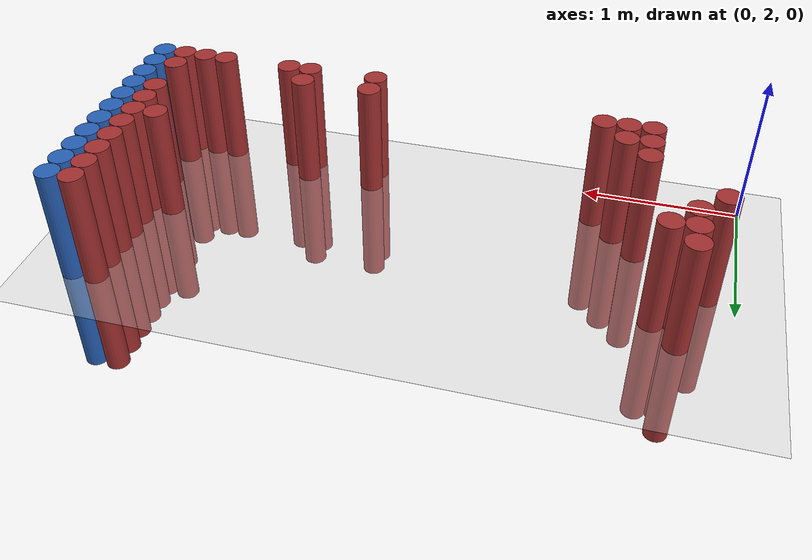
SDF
<sdf version="1.6">
 <world name="default">
  <model name="ground_plane">
   <static>1</static>
   <link name="link">
    <collision name="collision">
     <geometry><plane><normal>0 0 1</normal><size>100 100</size></plane></geometry>
     <surface><friction><ode><mu>100</mu><mu2>50</mu2></ode></friction></surface>
    </collision>
    <visual name="visual">
     <cast_shadows>0</cast_shadows>
     <geometry><plane><normal>0 0 1</normal><size>100 100</size></plane></geometry>
     <material>
      <script><uri>file://media/materials/scripts/gazebo.material</uri><name>Gazebo/Grey</name></script>
     </material>
    </visual>
   </link>
  </model>
  <model name="unit_cylinder_142">
   <static>1</static>
   <pose>3.925000 2.125000 0.000000 0.000000 0.000000 0.000000</pose>
   <link name="link">
    <inertial>
     <mass>1</mass>
     <inertia><ixx>0.145833</ixx><ixy>0</ixy><ixz>0</ixz><iyy>0.145833</iyy><iyz>0</iyz><izz>0.125</izz></inertia>
    </inertial>
    <collision name="collision">
     <geometry><cylinder><radius>0.075000</radius><length>1.5</length></cylinder></geometry>
    </collision>
    <visual name="visual">
     <geometry><cylinder><radius>0.075000</radius><length>1.5</length></cylinder></geometry>
     <material>
      <ambient>0.152000 0.379000 0.720000 1</ambient>
      <diffuse>0.152000 0.379000 0.720000 1</diffuse>
     </material>
     <material>
      <script><name>Gazebo/Grey</name><uri>file://media/materials/scripts/gazebo.material</uri></script>
     </material>
    </visual>
   </link>
  </model>
  <model name="unit_cylinder_144">
   <static>1</static>
   <pose>3.925000 2.275000 0.000000 0.000000 0.000000 0.000000</pose>
   <link name="link">
    <inertial>
     <mass>1</mass>
     <inertia><ixx>0.145833</ixx><ixy>0</ixy><ixz>0</ixz><iyy>0.145833</iyy><iyz>0</iyz><izz>0.125</izz></inertia>
    </inertial>
    <collision name="collision">
     <geometry><cylinder><radius>0.075000</radius><length>1.5</length></cylinder></geometry>
    </collision>
    <visual name="visual">
     <geometry><cylinder><radius>0.075000</radius><length>1.5</length></cylinder></geometry>
     <material>
      <ambient>0.152000 0.379000 0.720000 1</ambient>
      <diffuse>0.152000 0.379000 0.720000 1</diffuse>
     </material>
     <material>
      <script><name>Gazebo/Grey</name><uri>file://media/materials/scripts/gazebo.material</uri></script>
     </material>
    </visual>
   </link>
  </model>
  <model name="unit_cylinder_146">
   <static>1</static>
   <pose>3.925000 2.425000 0.000000 0.000000 0.000000 0.000000</pose>
   <link name="link">
    <inertial>
     <mass>1</mass>
     <inertia><ixx>0.145833</ixx><ixy>0</ixy><ixz>0</ixz><iyy>0.145833</iyy><iyz>0</iyz><izz>0.125</izz></inertia>
    </inertial>
    <collision name="collision">
     <geometry><cylinder><radius>0.075000</radius><length>1.5</length></cylinder></geometry>
    </collision>
    <visual name="visual">
     <geometry><cylinder><radius>0.075000</radius><length>1.5</length></cylinder></geometry>
     <material>
      <ambient>0.152000 0.379000 0.720000 1</ambient>
      <diffuse>0.152000 0.379000 0.720000 1</diffuse>
     </material>
     <material>
      <script><name>Gazebo/Grey</name><uri>file://media/materials/scripts/gazebo.material</uri></script>
     </material>
    </visual>
   </link>
  </model>
  <model name="unit_cylinder_148">
   <static>1</static>
   <pose>3.925000 2.575000 0.000000 0.000000 0.000000 0.000000</pose>
   <link name="link">
    <inertial>
     <mass>1</mass>
     <inertia><ixx>0.145833</ixx><ixy>0</ixy><ixz>0</ixz><iyy>0.145833</iyy><iyz>0</iyz><izz>0.125</izz></inertia>
    </inertial>
    <collision name="collision">
     <geometry><cylinder><radius>0.075000</radius><length>1.5</length></cylinder></geometry>
    </collision>
    <visual name="visual">
     <geometry><cylinder><radius>0.075000</radius><length>1.5</length></cylinder></geometry>
     <material>
      <ambient>0.152000 0.379000 0.720000 1</ambient>
      <diffuse>0.152000 0.379000 0.720000 1</diffuse>
     </material>
     <material>
      <script><name>Gazebo/Grey</name><uri>file://media/materials/scripts/gazebo.material</uri></script>
     </material>
    </visual>
   </link>
  </model>
  <model name="unit_cylinder_150">
   <static>1</static>
   <pose>3.925000 2.725000 0.000000 0.000000 0.000000 0.000000</pose>
   <link name="link">
    <inertial>
     <mass>1</mass>
     <inertia><ixx>0.145833</ixx><ixy>0</ixy><ixz>0</ixz><iyy>0.145833</iyy><iyz>0</iyz><izz>0.125</izz></inertia>
    </inertial>
    <collision name="collision">
     <geometry><cylinder><radius>0.075000</radius><length>1.5</length></cylinder></geometry>
    </collision>
    <visual name="visual">
     <geometry><cylinder><radius>0.075000</radius><length>1.5</length></cylinder></geometry>
     <material>
      <ambient>0.152000 0.379000 0.720000 1</ambient>
      <diffuse>0.152000 0.379000 0.720000 1</diffuse>
     </material>
     <material>
      <script><name>Gazebo/Grey</name><uri>file://media/materials/scripts/gazebo.material</uri></script>
     </material>
    </visual>
   </link>
  </model>
  <model name="unit_cylinder_152">
   <static>1</static>
   <pose>3.925000 2.875000 0.000000 0.000000 0.000000 0.000000</pose>
   <link name="link">
    <inertial>
     <mass>1</mass>
     <inertia><ixx>0.145833</ixx><ixy>0</ixy><ixz>0</ixz><iyy>0.145833</iyy><iyz>0</iyz><izz>0.125</izz></inertia>
    </inertial>
    <collision name="collision">
     <geometry><cylinder><radius>0.075000</radius><length>1.5</length></cylinder></geometry>
    </collision>
    <visual name="visual">
     <geometry><cylinder><radius>0.075000</radius><length>1.5</length></cylinder></geometry>
     <material>
      <ambient>0.152000 0.379000 0.720000 1</ambient>
      <diffuse>0.152000 0.379000 0.720000 1</diffuse>
     </material>
     <material>
      <script><name>Gazebo/Grey</name><uri>file://media/materials/scripts/gazebo.material</uri></script>
     </material>
    </visual>
   </link>
  </model>
  <model name="unit_cylinder_154">
   <static>1</static>
   <pose>3.925000 3.025000 0.000000 0.000000 0.000000 0.000000</pose>
   <link name="link">
    <inertial>
     <mass>1</mass>
     <inertia><ixx>0.145833</ixx><ixy>0</ixy><ixz>0</ixz><iyy>0.145833</iyy><iyz>0</iyz><izz>0.125</izz></inertia>
    </inertial>
    <collision name="collision">
     <geometry><cylinder><radius>0.075000</radius><length>1.5</length></cylinder></geometry>
    </collision>
    <visual name="visual">
     <geometry><cylinder><radius>0.075000</radius><length>1.5</length></cylinder></geometry>
     <material>
      <ambient>0.152000 0.379000 0.720000 1</ambient>
      <diffuse>0.152000 0.379000 0.720000 1</diffuse>
     </material>
     <material>
      <script><name>Gazebo/Grey</name><uri>file://media/materials/scripts/gazebo.material</uri></script>
     </material>
    </visual>
   </link>
  </model>
  <model name="unit_cylinder_156">
   <static>1</static>
   <pose>3.925000 3.175000 0.000000 0.000000 0.000000 0.000000</pose>
   <link name="link">
    <inertial>
     <mass>1</mass>
     <inertia><ixx>0.145833</ixx><ixy>0</ixy><ixz>0</ixz><iyy>0.145833</iyy><iyz>0</iyz><izz>0.125</izz></inertia>
    </inertial>
    <collision name="collision">
     <geometry><cylinder><radius>0.075000</radius><length>1.5</length></cylinder></geometry>
    </collision>
    <visual name="visual">
     <geometry><cylinder><radius>0.075000</radius><length>1.5</length></cylinder></geometry>
     <material>
      <ambient>0.152000 0.379000 0.720000 1</ambient>
      <diffuse>0.152000 0.379000 0.720000 1</diffuse>
     </material>
     <material>
      <script><name>Gazebo/Grey</name><uri>file://media/materials/scripts/gazebo.material</uri></script>
     </material>
    </visual>
   </link>
  </model>
  <model name="unit_cylinder_158">
   <static>1</static>
   <pose>3.925000 3.325000 0.000000 0.000000 0.000000 0.000000</pose>
   <link name="link">
    <inertial>
     <mass>1</mass>
     <inertia><ixx>0.145833</ixx><ixy>0</ixy><ixz>0</ixz><iyy>0.145833</iyy><iyz>0</iyz><izz>0.125</izz></inertia>
    </inertial>
    <collision name="collision">
     <geometry><cylinder><radius>0.075000</radius><length>1.5</length></cylinder></geometry>
    </collision>
    <visual name="visual">
     <geometry><cylinder><radius>0.075000</radius><length>1.5</length></cylinder></geometry>
     <material>
      <ambient>0.152000 0.379000 0.720000 1</ambient>
      <diffuse>0.152000 0.379000 0.720000 1</diffuse>
     </material>
     <material>
      <script><name>Gazebo/Grey</name><uri>file://media/materials/scripts/gazebo.material</uri></script>
     </material>
    </visual>
   </link>
  </model>
  <model name="unit_cylinder_160">
   <static>1</static>
   <pose>3.925000 3.475000 0.000000 0.000000 0.000000 0.000000</pose>
   <link name="link">
    <inertial>
     <mass>1</mass>
     <inertia><ixx>0.145833</ixx><ixy>0</ixy><ixz>0</ixz><iyy>0.145833</iyy><iyz>0</iyz><izz>0.125</izz></inertia>
    </inertial>
    <collision name="collision">
     <geometry><cylinder><radius>0.075000</radius><length>1.5</length></cylinder></geometry>
    </collision>
    <visual name="visual">
     <geometry><cylinder><radius>0.075000</radius><length>1.5</length></cylinder></geometry>
     <material>
      <ambient>0.152000 0.379000 0.720000 1</ambient>
      <diffuse>0.152000 0.379000 0.720000 1</diffuse>
     </material>
     <material>
      <script><name>Gazebo/Grey</name><uri>file://media/materials/scripts/gazebo.material</uri></script>
     </material>
    </visual>
   </link>
  </model>
  <model name="unit_cylinder_162">
   <static>1</static>
   <pose>3.925000 3.625000 0.000000 0.000000 0.000000 0.000000</pose>
   <link name="link">
    <inertial>
     <mass>1</mass>
     <inertia><ixx>0.145833</ixx><ixy>0</ixy><ixz>0</ixz><iyy>0.145833</iyy><iyz>0</iyz><izz>0.125</izz></inertia>
    </inertial>
    <collision name="collision">
     <geometry><cylinder><radius>0.075000</radius><length>1.5</length></cylinder></geometry>
    </collision>
    <visual name="visual">
     <geometry><cylinder><radius>0.075000</radius><length>1.5</length></cylinder></geometry>
     <material>
      <ambient>0.152000 0.379000 0.720000 1</ambient>
      <diffuse>0.152000 0.379000 0.720000 1</diffuse>
     </material>
     <material>
      <script><name>Gazebo/Grey</name><uri>file://media/materials/scripts/gazebo.material</uri></script>
     </material>
    </visual>
   </link>
  </model>
  <model name="unit_cylinder_385">
   <static>1</static>
   <pose>0.175000 2.875000 0.000000 0.000000 0.000000 0.000000</pose>
   <link name="link">
    <inertial>
     <mass>1</mass>
     <inertia><ixx>0.145833</ixx><ixy>0</ixy><ixz>0</ixz><iyy>0.145833</iyy><iyz>0</iyz><izz>0.125</izz></inertia>
    </inertial>
    <collision name="collision">
     <geometry><cylinder><radius>0.075000</radius><length>1.5</length></cylinder></geometry>
    </collision>
    <visual name="visual">
     <geometry><cylinder><radius>0.075000</radius><length>1.5</length></cylinder></geometry>
     <material>
      <ambient>0.648000 0.192000 0.192000 1</ambient>
      <diffuse>0.648000 0.192000 0.192000 1</diffuse>
     </material>
     <material>
      <script><name>Gazebo/Grey</name><uri>file://media/materials/scripts/gazebo.material</uri></script>
     </material>
    </visual>
   </link>
  </model>
  <model name="unit_cylinder_390">
   <static>1</static>
   <pose>0.325000 3.025000 0.000000 0.000000 0.000000 0.000000</pose>
   <link name="link">
    <inertial>
     <mass>1</mass>
     <inertia><ixx>0.145833</ixx><ixy>0</ixy><ixz>0</ixz><iyy>0.145833</iyy><iyz>0</iyz><izz>0.125</izz></inertia>
    </inertial>
    <collision name="collision">
     <geometry><cylinder><radius>0.075000</radius><length>1.5</length></cylinder></geometry>
    </collision>
    <visual name="visual">
     <geometry><cylinder><radius>0.075000</radius><length>1.5</length></cylinder></geometry>
     <material>
      <ambient>0.648000 0.192000 0.192000 1</ambient>
      <diffuse>0.648000 0.192000 0.192000 1</diffuse>
     </material>
     <material>
      <script><name>Gazebo/Grey</name><uri>file://media/materials/scripts/gazebo.material</uri></script>
     </material>
    </visual>
   </link>
  </model>
  <model name="unit_cylinder_391">
   <static>1</static>
   <pose>0.325000 3.175000 0.000000 0.000000 0.000000 0.000000</pose>
   <link name="link">
    <inertial>
     <mass>1</mass>
     <inertia><ixx>0.145833</ixx><ixy>0</ixy><ixz>0</ixz><iyy>0.145833</iyy><iyz>0</iyz><izz>0.125</izz></inertia>
    </inertial>
    <collision name="collision">
     <geometry><cylinder><radius>0.075000</radius><length>1.5</length></cylinder></geometry>
    </collision>
    <visual name="visual">
     <geometry><cylinder><radius>0.075000</radius><length>1.5</length></cylinder></geometry>
     <material>
      <ambient>0.648000 0.192000 0.192000 1</ambient>
      <diffuse>0.648000 0.192000 0.192000 1</diffuse>
     </material>
     <material>
      <script><name>Gazebo/Grey</name><uri>file://media/materials/scripts/gazebo.material</uri></script>
     </material>
    </visual>
   </link>
  </model>
  <model name="unit_cylinder_392">
   <static>1</static>
   <pose>0.325000 3.325000 0.000000 0.000000 0.000000 0.000000</pose>
   <link name="link">
    <inertial>
     <mass>1</mass>
     <inertia><ixx>0.145833</ixx><ixy>0</ixy><ixz>0</ixz><iyy>0.145833</iyy><iyz>0</iyz><izz>0.125</izz></inertia>
    </inertial>
    <collision name="collision">
     <geometry><cylinder><radius>0.075000</radius><length>1.5</length></cylinder></geometry>
    </collision>
    <visual name="visual">
     <geometry><cylinder><radius>0.075000</radius><length>1.5</length></cylinder></geometry>
     <material>
      <ambient>0.648000 0.192000 0.192000 1</ambient>
      <diffuse>0.648000 0.192000 0.192000 1</diffuse>
     </material>
     <material>
      <script><name>Gazebo/Grey</name><uri>file://media/materials/scripts/gazebo.material</uri></script>
     </material>
    </visual>
   </link>
  </model>
  <model name="unit_cylinder_399">
   <static>1</static>
   <pose>0.475000 3.175000 0.000000 0.000000 0.000000 0.000000</pose>
   <link name="link">
    <inertial>
     <mass>1</mass>
     <inertia><ixx>0.145833</ixx><ixy>0</ixy><ixz>0</ixz><iyy>0.145833</iyy><iyz>0</iyz><izz>0.125</izz></inertia>
    </inertial>
    <collision name="collision">
     <geometry><cylinder><radius>0.075000</radius><length>1.5</length></cylinder></geometry>
    </collision>
    <visual name="visual">
     <geometry><cylinder><radius>0.075000</radius><length>1.5</length></cylinder></geometry>
     <material>
      <ambient>0.648000 0.192000 0.192000 1</ambient>
      <diffuse>0.648000 0.192000 0.192000 1</diffuse>
     </material>
     <material>
      <script><name>Gazebo/Grey</name><uri>file://media/materials/scripts/gazebo.material</uri></script>
     </material>
    </visual>
   </link>
  </model>
  <model name="unit_cylinder_404">
   <static>1</static>
   <pose>0.625000 2.275000 0.000000 0.000000 0.000000 0.000000</pose>
   <link name="link">
    <inertial>
     <mass>1</mass>
     <inertia><ixx>0.145833</ixx><ixy>0</ixy><ixz>0</ixz><iyy>0.145833</iyy><iyz>0</iyz><izz>0.125</izz></inertia>
    </inertial>
    <collision name="collision">
     <geometry><cylinder><radius>0.075000</radius><length>1.5</length></cylinder></geometry>
    </collision>
    <visual name="visual">
     <geometry><cylinder><radius>0.075000</radius><length>1.5</length></cylinder></geometry>
     <material>
      <ambient>0.648000 0.192000 0.192000 1</ambient>
      <diffuse>0.648000 0.192000 0.192000 1</diffuse>
     </material>
     <material>
      <script><name>Gazebo/Grey</name><uri>file://media/materials/scripts/gazebo.material</uri></script>
     </material>
    </visual>
   </link>
  </model>
  <model name="unit_cylinder_405">
   <static>1</static>
   <pose>0.625000 2.425000 0.000000 0.000000 0.000000 0.000000</pose>
   <link name="link">
    <inertial>
     <mass>1</mass>
     <inertia><ixx>0.145833</ixx><ixy>0</ixy><ixz>0</ixz><iyy>0.145833</iyy><iyz>0</iyz><izz>0.125</izz></inertia>
    </inertial>
    <collision name="collision">
     <geometry><cylinder><radius>0.075000</radius><length>1.5</length></cylinder></geometry>
    </collision>
    <visual name="visual">
     <geometry><cylinder><radius>0.075000</radius><length>1.5</length></cylinder></geometry>
     <material>
      <ambient>0.648000 0.192000 0.192000 1</ambient>
      <diffuse>0.648000 0.192000 0.192000 1</diffuse>
     </material>
     <material>
      <script><name>Gazebo/Grey</name><uri>file://media/materials/scripts/gazebo.material</uri></script>
     </material>
    </visual>
   </link>
  </model>
  <model name="unit_cylinder_406">
   <static>1</static>
   <pose>0.625000 2.575000 0.000000 0.000000 0.000000 0.000000</pose>
   <link name="link">
    <inertial>
     <mass>1</mass>
     <inertia><ixx>0.145833</ixx><ixy>0</ixy><ixz>0</ixz><iyy>0.145833</iyy><iyz>0</iyz><izz>0.125</izz></inertia>
    </inertial>
    <collision name="collision">
     <geometry><cylinder><radius>0.075000</radius><length>1.5</length></cylinder></geometry>
    </collision>
    <visual name="visual">
     <geometry><cylinder><radius>0.075000</radius><length>1.5</length></cylinder></geometry>
     <material>
      <ambient>0.648000 0.192000 0.192000 1</ambient>
      <diffuse>0.648000 0.192000 0.192000 1</diffuse>
     </material>
     <material>
      <script><name>Gazebo/Grey</name><uri>file://media/materials/scripts/gazebo.material</uri></script>
     </material>
    </visual>
   </link>
  </model>
  <model name="unit_cylinder_407">
   <static>1</static>
   <pose>0.775000 2.275000 0.000000 0.000000 0.000000 0.000000</pose>
   <link name="link">
    <inertial>
     <mass>1</mass>
     <inertia><ixx>0.145833</ixx><ixy>0</ixy><ixz>0</ixz><iyy>0.145833</iyy><iyz>0</iyz><izz>0.125</izz></inertia>
    </inertial>
    <collision name="collision">
     <geometry><cylinder><radius>0.075000</radius><length>1.5</length></cylinder></geometry>
    </collision>
    <visual name="visual">
     <geometry><cylinder><radius>0.075000</radius><length>1.5</length></cylinder></geometry>
     <material>
      <ambient>0.648000 0.192000 0.192000 1</ambient>
      <diffuse>0.648000 0.192000 0.192000 1</diffuse>
     </material>
     <material>
      <script><name>Gazebo/Grey</name><uri>file://media/materials/scripts/gazebo.material</uri></script>
     </material>
    </visual>
   </link>
  </model>
  <model name="unit_cylinder_408">
   <static>1</static>
   <pose>0.775000 2.425000 0.000000 0.000000 0.000000 0.000000</pose>
   <link name="link">
    <inertial>
     <mass>1</mass>
     <inertia><ixx>0.145833</ixx><ixy>0</ixy><ixz>0</ixz><iyy>0.145833</iyy><iyz>0</iyz><izz>0.125</izz></inertia>
    </inertial>
    <collision name="collision">
     <geometry><cylinder><radius>0.075000</radius><length>1.5</length></cylinder></geometry>
    </collision>
    <visual name="visual">
     <geometry><cylinder><radius>0.075000</radius><length>1.5</length></cylinder></geometry>
     <material>
      <ambient>0.648000 0.192000 0.192000 1</ambient>
      <diffuse>0.648000 0.192000 0.192000 1</diffuse>
     </material>
     <material>
      <script><name>Gazebo/Grey</name><uri>file://media/materials/scripts/gazebo.material</uri></script>
     </material>
    </visual>
   </link>
  </model>
  <model name="unit_cylinder_409">
   <static>1</static>
   <pose>0.925000 2.275000 0.000000 0.000000 0.000000 0.000000</pose>
   <link name="link">
    <inertial>
     <mass>1</mass>
     <inertia><ixx>0.145833</ixx><ixy>0</ixy><ixz>0</ixz><iyy>0.145833</iyy><iyz>0</iyz><izz>0.125</izz></inertia>
    </inertial>
    <collision name="collision">
     <geometry><cylinder><radius>0.075000</radius><length>1.5</length></cylinder></geometry>
    </collision>
    <visual name="visual">
     <geometry><cylinder><radius>0.075000</radius><length>1.5</length></cylinder></geometry>
     <material>
      <ambient>0.648000 0.192000 0.192000 1</ambient>
      <diffuse>0.648000 0.192000 0.192000 1</diffuse>
     </material>
     <material>
      <script><name>Gazebo/Grey</name><uri>file://media/materials/scripts/gazebo.material</uri></script>
     </material>
    </visual>
   </link>
  </model>
  <model name="unit_cylinder_443">
   <static>1</static>
   <pose>2.425000 2.125000 0.000000 0.000000 0.000000 0.000000</pose>
   <link name="link">
    <inertial>
     <mass>1</mass>
     <inertia><ixx>0.145833</ixx><ixy>0</ixy><ixz>0</ixz><iyy>0.145833</iyy><iyz>0</iyz><izz>0.125</izz></inertia>
    </inertial>
    <collision name="collision">
     <geometry><cylinder><radius>0.075000</radius><length>1.5</length></cylinder></geometry>
    </collision>
    <visual name="visual">
     <geometry><cylinder><radius>0.075000</radius><length>1.5</length></cylinder></geometry>
     <material>
      <ambient>0.648000 0.192000 0.192000 1</ambient>
      <diffuse>0.648000 0.192000 0.192000 1</diffuse>
     </material>
     <material>
      <script><name>Gazebo/Grey</name><uri>file://media/materials/scripts/gazebo.material</uri></script>
     </material>
    </visual>
   </link>
  </model>
  <model name="unit_cylinder_444">
   <static>1</static>
   <pose>2.425000 2.275000 0.000000 0.000000 0.000000 0.000000</pose>
   <link name="link">
    <inertial>
     <mass>1</mass>
     <inertia><ixx>0.145833</ixx><ixy>0</ixy><ixz>0</ixz><iyy>0.145833</iyy><iyz>0</iyz><izz>0.125</izz></inertia>
    </inertial>
    <collision name="collision">
     <geometry><cylinder><radius>0.075000</radius><length>1.5</length></cylinder></geometry>
    </collision>
    <visual name="visual">
     <geometry><cylinder><radius>0.075000</radius><length>1.5</length></cylinder></geometry>
     <material>
      <ambient>0.648000 0.192000 0.192000 1</ambient>
      <diffuse>0.648000 0.192000 0.192000 1</diffuse>
     </material>
     <material>
      <script><name>Gazebo/Grey</name><uri>file://media/materials/scripts/gazebo.material</uri></script>
     </material>
    </visual>
   </link>
  </model>
  <model name="unit_cylinder_453">
   <static>1</static>
   <pose>2.875000 2.125000 0.000000 0.000000 0.000000 0.000000</pose>
   <link name="link">
    <inertial>
     <mass>1</mass>
     <inertia><ixx>0.145833</ixx><ixy>0</ixy><ixz>0</ixz><iyy>0.145833</iyy><iyz>0</iyz><izz>0.125</izz></inertia>
    </inertial>
    <collision name="collision">
     <geometry><cylinder><radius>0.075000</radius><length>1.5</length></cylinder></geometry>
    </collision>
    <visual name="visual">
     <geometry><cylinder><radius>0.075000</radius><length>1.5</length></cylinder></geometry>
     <material>
      <ambient>0.648000 0.192000 0.192000 1</ambient>
      <diffuse>0.648000 0.192000 0.192000 1</diffuse>
     </material>
     <material>
      <script><name>Gazebo/Grey</name><uri>file://media/materials/scripts/gazebo.material</uri></script>
     </material>
    </visual>
   </link>
  </model>
  <model name="unit_cylinder_454">
   <static>1</static>
   <pose>2.875000 2.275000 0.000000 0.000000 0.000000 0.000000</pose>
   <link name="link">
    <inertial>
     <mass>1</mass>
     <inertia><ixx>0.145833</ixx><ixy>0</ixy><ixz>0</ixz><iyy>0.145833</iyy><iyz>0</iyz><izz>0.125</izz></inertia>
    </inertial>
    <collision name="collision">
     <geometry><cylinder><radius>0.075000</radius><length>1.5</length></cylinder></geometry>
    </collision>
    <visual name="visual">
     <geometry><cylinder><radius>0.075000</radius><length>1.5</length></cylinder></geometry>
     <material>
      <ambient>0.648000 0.192000 0.192000 1</ambient>
      <diffuse>0.648000 0.192000 0.192000 1</diffuse>
     </material>
     <material>
      <script><name>Gazebo/Grey</name><uri>file://media/materials/scripts/gazebo.material</uri></script>
     </material>
    </visual>
   </link>
  </model>
  <model name="unit_cylinder_462">
   <static>1</static>
   <pose>3.025000 2.125000 0.000000 0.000000 0.000000 0.000000</pose>
   <link name="link">
    <inertial>
     <mass>1</mass>
     <inertia><ixx>0.145833</ixx><ixy>0</ixy><ixz>0</ixz><iyy>0.145833</iyy><iyz>0</iyz><izz>0.125</izz></inertia>
    </inertial>
    <collision name="collision">
     <geometry><cylinder><radius>0.075000</radius><length>1.5</length></cylinder></geometry>
    </collision>
    <visual name="visual">
     <geometry><cylinder><radius>0.075000</radius><length>1.5</length></cylinder></geometry>
     <material>
      <ambient>0.648000 0.192000 0.192000 1</ambient>
      <diffuse>0.648000 0.192000 0.192000 1</diffuse>
     </material>
     <material>
      <script><name>Gazebo/Grey</name><uri>file://media/materials/scripts/gazebo.material</uri></script>
     </material>
    </visual>
   </link>
  </model>
  <model name="unit_cylinder_472">
   <static>1</static>
   <pose>3.475000 2.125000 0.000000 0.000000 0.000000 0.000000</pose>
   <link name="link">
    <inertial>
     <mass>1</mass>
     <inertia><ixx>0.145833</ixx><ixy>0</ixy><ixz>0</ixz><iyy>0.145833</iyy><iyz>0</iyz><izz>0.125</izz></inertia>
    </inertial>
    <collision name="collision">
     <geometry><cylinder><radius>0.075000</radius><length>1.5</length></cylinder></geometry>
    </collision>
    <visual name="visual">
     <geometry><cylinder><radius>0.075000</radius><length>1.5</length></cylinder></geometry>
     <material>
      <ambient>0.648000 0.192000 0.192000 1</ambient>
      <diffuse>0.648000 0.192000 0.192000 1</diffuse>
     </material>
     <material>
      <script><name>Gazebo/Grey</name><uri>file://media/materials/scripts/gazebo.material</uri></script>
     </material>
    </visual>
   </link>
  </model>
  <model name="unit_cylinder_474">
   <static>1</static>
   <pose>3.625000 2.125000 0.000000 0.000000 0.000000 0.000000</pose>
   <link name="link">
    <inertial>
     <mass>1</mass>
     <inertia><ixx>0.145833</ixx><ixy>0</ixy><ixz>0</ixz><iyy>0.145833</iyy><iyz>0</iyz><izz>0.125</izz></inertia>
    </inertial>
    <collision name="collision">
     <geometry><cylinder><radius>0.075000</radius><length>1.5</length></cylinder></geometry>
    </collision>
    <visual name="visual">
     <geometry><cylinder><radius>0.075000</radius><length>1.5</length></cylinder></geometry>
     <material>
      <ambient>0.648000 0.192000 0.192000 1</ambient>
      <diffuse>0.648000 0.192000 0.192000 1</diffuse>
     </material>
     <material>
      <script><name>Gazebo/Grey</name><uri>file://media/materials/scripts/gazebo.material</uri></script>
     </material>
    </visual>
   </link>
  </model>
  <model name="unit_cylinder_475">
   <static>1</static>
   <pose>3.625000 2.875000 0.000000 0.000000 0.000000 0.000000</pose>
   <link name="link">
    <inertial>
     <mass>1</mass>
     <inertia><ixx>0.145833</ixx><ixy>0</ixy><ixz>0</ixz><iyy>0.145833</iyy><iyz>0</iyz><izz>0.125</izz></inertia>
    </inertial>
    <collision name="collision">
     <geometry><cylinder><radius>0.075000</radius><length>1.5</length></cylinder></geometry>
    </collision>
    <visual name="visual">
     <geometry><cylinder><radius>0.075000</radius><length>1.5</length></cylinder></geometry>
     <material>
      <ambient>0.648000 0.192000 0.192000 1</ambient>
      <diffuse>0.648000 0.192000 0.192000 1</diffuse>
     </material>
     <material>
      <script><name>Gazebo/Grey</name><uri>file://media/materials/scripts/gazebo.material</uri></script>
     </material>
    </visual>
   </link>
  </model>
  <model name="unit_cylinder_484">
   <static>1</static>
   <pose>3.775000 2.125000 0.000000 0.000000 0.000000 0.000000</pose>
   <link name="link">
    <inertial>
     <mass>1</mass>
     <inertia><ixx>0.145833</ixx><ixy>0</ixy><ixz>0</ixz><iyy>0.145833</iyy><iyz>0</iyz><izz>0.125</izz></inertia>
    </inertial>
    <collision name="collision">
     <geometry><cylinder><radius>0.075000</radius><length>1.5</length></cylinder></geometry>
    </collision>
    <visual name="visual">
     <geometry><cylinder><radius>0.075000</radius><length>1.5</length></cylinder></geometry>
     <material>
      <ambient>0.648000 0.192000 0.192000 1</ambient>
      <diffuse>0.648000 0.192000 0.192000 1</diffuse>
     </material>
     <material>
      <script><name>Gazebo/Grey</name><uri>file://media/materials/scripts/gazebo.material</uri></script>
     </material>
    </visual>
   </link>
  </model>
  <model name="unit_cylinder_485">
   <static>1</static>
   <pose>3.775000 2.275000 0.000000 0.000000 0.000000 0.000000</pose>
   <link name="link">
    <inertial>
     <mass>1</mass>
     <inertia><ixx>0.145833</ixx><ixy>0</ixy><ixz>0</ixz><iyy>0.145833</iyy><iyz>0</iyz><izz>0.125</izz></inertia>
    </inertial>
    <collision name="collision">
     <geometry><cylinder><radius>0.075000</radius><length>1.5</length></cylinder></geometry>
    </collision>
    <visual name="visual">
     <geometry><cylinder><radius>0.075000</radius><length>1.5</length></cylinder></geometry>
     <material>
      <ambient>0.648000 0.192000 0.192000 1</ambient>
      <diffuse>0.648000 0.192000 0.192000 1</diffuse>
     </material>
     <material>
      <script><name>Gazebo/Grey</name><uri>file://media/materials/scripts/gazebo.material</uri></script>
     </material>
    </visual>
   </link>
  </model>
  <model name="unit_cylinder_486">
   <static>1</static>
   <pose>3.775000 2.575000 0.000000 0.000000 0.000000 0.000000</pose>
   <link name="link">
    <inertial>
     <mass>1</mass>
     <inertia><ixx>0.145833</ixx><ixy>0</ixy><ixz>0</ixz><iyy>0.145833</iyy><iyz>0</iyz><izz>0.125</izz></inertia>
    </inertial>
    <collision name="collision">
     <geometry><cylinder><radius>0.075000</radius><length>1.5</length></cylinder></geometry>
    </collision>
    <visual name="visual">
     <geometry><cylinder><radius>0.075000</radius><length>1.5</length></cylinder></geometry>
     <material>
      <ambient>0.648000 0.192000 0.192000 1</ambient>
      <diffuse>0.648000 0.192000 0.192000 1</diffuse>
     </material>
     <material>
      <script><name>Gazebo/Grey</name><uri>file://media/materials/scripts/gazebo.material</uri></script>
     </material>
    </visual>
   </link>
  </model>
  <model name="unit_cylinder_487">
   <static>1</static>
   <pose>3.775000 2.725000 0.000000 0.000000 0.000000 0.000000</pose>
   <link name="link">
    <inertial>
     <mass>1</mass>
     <inertia><ixx>0.145833</ixx><ixy>0</ixy><ixz>0</ixz><iyy>0.145833</iyy><iyz>0</iyz><izz>0.125</izz></inertia>
    </inertial>
    <collision name="collision">
     <geometry><cylinder><radius>0.075000</radius><length>1.5</length></cylinder></geometry>
    </collision>
    <visual name="visual">
     <geometry><cylinder><radius>0.075000</radius><length>1.5</length></cylinder></geometry>
     <material>
      <ambient>0.648000 0.192000 0.192000 1</ambient>
      <diffuse>0.648000 0.192000 0.192000 1</diffuse>
     </material>
     <material>
      <script><name>Gazebo/Grey</name><uri>file://media/materials/scripts/gazebo.material</uri></script>
     </material>
    </visual>
   </link>
  </model>
  <model name="unit_cylinder_488">
   <static>1</static>
   <pose>3.775000 2.875000 0.000000 0.000000 0.000000 0.000000</pose>
   <link name="link">
    <inertial>
     <mass>1</mass>
     <inertia><ixx>0.145833</ixx><ixy>0</ixy><ixz>0</ixz><iyy>0.145833</iyy><iyz>0</iyz><izz>0.125</izz></inertia>
    </inertial>
    <collision name="collision">
     <geometry><cylinder><radius>0.075000</radius><length>1.5</length></cylinder></geometry>
    </collision>
    <visual name="visual">
     <geometry><cylinder><radius>0.075000</radius><length>1.5</length></cylinder></geometry>
     <material>
      <ambient>0.648000 0.192000 0.192000 1</ambient>
      <diffuse>0.648000 0.192000 0.192000 1</diffuse>
     </material>
     <material>
      <script><name>Gazebo/Grey</name><uri>file://media/materials/scripts/gazebo.material</uri></script>
     </material>
    </visual>
   </link>
  </model>
  <model name="unit_cylinder_489">
   <static>1</static>
   <pose>3.775000 3.025000 0.000000 0.000000 0.000000 0.000000</pose>
   <link name="link">
    <inertial>
     <mass>1</mass>
     <inertia><ixx>0.145833</ixx><ixy>0</ixy><ixz>0</ixz><iyy>0.145833</iyy><iyz>0</iyz><izz>0.125</izz></inertia>
    </inertial>
    <collision name="collision">
     <geometry><cylinder><radius>0.075000</radius><length>1.5</length></cylinder></geometry>
    </collision>
    <visual name="visual">
     <geometry><cylinder><radius>0.075000</radius><length>1.5</length></cylinder></geometry>
     <material>
      <ambient>0.648000 0.192000 0.192000 1</ambient>
      <diffuse>0.648000 0.192000 0.192000 1</diffuse>
     </material>
     <material>
      <script><name>Gazebo/Grey</name><uri>file://media/materials/scripts/gazebo.material</uri></script>
     </material>
    </visual>
   </link>
  </model>
  <model name="unit_cylinder_490">
   <static>1</static>
   <pose>3.775000 3.175000 0.000000 0.000000 0.000000 0.000000</pose>
   <link name="link">
    <inertial>
     <mass>1</mass>
     <inertia><ixx>0.145833</ixx><ixy>0</ixy><ixz>0</ixz><iyy>0.145833</iyy><iyz>0</iyz><izz>0.125</izz></inertia>
    </inertial>
    <collision name="collision">
     <geometry><cylinder><radius>0.075000</radius><length>1.5</length></cylinder></geometry>
    </collision>
    <visual name="visual">
     <geometry><cylinder><radius>0.075000</radius><length>1.5</length></cylinder></geometry>
     <material>
      <ambient>0.648000 0.192000 0.192000 1</ambient>
      <diffuse>0.648000 0.192000 0.192000 1</diffuse>
     </material>
     <material>
      <script><name>Gazebo/Grey</name><uri>file://media/materials/scripts/gazebo.material</uri></script>
     </material>
    </visual>
   </link>
  </model>
  <model name="unit_cylinder_491">
   <static>1</static>
   <pose>3.775000 3.325000 0.000000 0.000000 0.000000 0.000000</pose>
   <link name="link">
    <inertial>
     <mass>1</mass>
     <inertia><ixx>0.145833</ixx><ixy>0</ixy><ixz>0</ixz><iyy>0.145833</iyy><iyz>0</iyz><izz>0.125</izz></inertia>
    </inertial>
    <collision name="collision">
     <geometry><cylinder><radius>0.075000</radius><length>1.5</length></cylinder></geometry>
    </collision>
    <visual name="visual">
     <geometry><cylinder><radius>0.075000</radius><length>1.5</length></cylinder></geometry>
     <material>
      <ambient>0.648000 0.192000 0.192000 1</ambient>
      <diffuse>0.648000 0.192000 0.192000 1</diffuse>
     </material>
     <material>
      <script><name>Gazebo/Grey</name><uri>file://media/materials/scripts/gazebo.material</uri></script>
     </material>
    </visual>
   </link>
  </model>
  <model name="unit_cylinder_492">
   <static>1</static>
   <pose>3.775000 3.475000 0.000000 0.000000 0.000000 0.000000</pose>
   <link name="link">
    <inertial>
     <mass>1</mass>
     <inertia><ixx>0.145833</ixx><ixy>0</ixy><ixz>0</ixz><iyy>0.145833</iyy><iyz>0</iyz><izz>0.125</izz></inertia>
    </inertial>
    <collision name="collision">
     <geometry><cylinder><radius>0.075000</radius><length>1.5</length></cylinder></geometry>
    </collision>
    <visual name="visual">
     <geometry><cylinder><radius>0.075000</radius><length>1.5</length></cylinder></geometry>
     <material>
      <ambient>0.648000 0.192000 0.192000 1</ambient>
      <diffuse>0.648000 0.192000 0.192000 1</diffuse>
     </material>
     <material>
      <script><name>Gazebo/Grey</name><uri>file://media/materials/scripts/gazebo.material</uri></script>
     </material>
    </visual>
   </link>
  </model>
  <model name="unit_cylinder_493">
   <static>1</static>
   <pose>3.775000 3.625000 0.000000 0.000000 0.000000 0.000000</pose>
   <link name="link">
    <inertial>
     <mass>1</mass>
     <inertia><ixx>0.145833</ixx><ixy>0</ixy><ixz>0</ixz><iyy>0.145833</iyy><iyz>0</iyz><izz>0.125</izz></inertia>
    </inertial>
    <collision name="collision">
     <geometry><cylinder><radius>0.075000</radius><length>1.5</length></cylinder></geometry>
    </collision>
    <visual name="visual">
     <geometry><cylinder><radius>0.075000</radius><length>1.5</length></cylinder></geometry>
     <material>
      <ambient>0.648000 0.192000 0.192000 1</ambient>
      <diffuse>0.648000 0.192000 0.192000 1</diffuse>
     </material>
     <material>
      <script><name>Gazebo/Grey</name><uri>file://media/materials/scripts/gazebo.material</uri></script>
     </material>
    </visual>
   </link>
  </model>
  <model name="unit_cylinder_525">
   <static>1</static>
   <pose>3.925000 2.125000 0.000000 0.000000 0.000000 0.000000</pose>
   <link name="link">
    <inertial>
     <mass>1</mass>
     <inertia><ixx>0.145833</ixx><ixy>0</ixy><ixz>0</ixz><iyy>0.145833</iyy><iyz>0</iyz><izz>0.125</izz></inertia>
    </inertial>
    <collision name="collision">
     <geometry><cylinder><radius>0.075000</radius><length>1.5</length></cylinder></geometry>
    </collision>
    <visual name="visual">
     <geometry><cylinder><radius>0.075000</radius><length>1.5</length></cylinder></geometry>
     <material>
      <ambient>0.152000 0.379000 0.720000 1</ambient>
      <diffuse>0.152000 0.379000 0.720000 1</diffuse>
     </material>
     <material>
      <script><name>Gazebo/Grey</name><uri>file://media/materials/scripts/gazebo.material</uri></script>
     </material>
    </visual>
   </link>
  </model>
  <model name="unit_cylinder_526">
   <static>1</static>
   <pose>3.925000 2.275000 0.000000 0.000000 0.000000 0.000000</pose>
   <link name="link">
    <inertial>
     <mass>1</mass>
     <inertia><ixx>0.145833</ixx><ixy>0</ixy><ixz>0</ixz><iyy>0.145833</iyy><iyz>0</iyz><izz>0.125</izz></inertia>
    </inertial>
    <collision name="collision">
     <geometry><cylinder><radius>0.075000</radius><length>1.5</length></cylinder></geometry>
    </collision>
    <visual name="visual">
     <geometry><cylinder><radius>0.075000</radius><length>1.5</length></cylinder></geometry>
     <material>
      <ambient>0.152000 0.379000 0.720000 1</ambient>
      <diffuse>0.152000 0.379000 0.720000 1</diffuse>
     </material>
     <material>
      <script><name>Gazebo/Grey</name><uri>file://media/materials/scripts/gazebo.material</uri></script>
     </material>
    </visual>
   </link>
  </model>
  <model name="unit_cylinder_527">
   <static>1</static>
   <pose>3.925000 2.425000 0.000000 0.000000 0.000000 0.000000</pose>
   <link name="link">
    <inertial>
     <mass>1</mass>
     <inertia><ixx>0.145833</ixx><ixy>0</ixy><ixz>0</ixz><iyy>0.145833</iyy><iyz>0</iyz><izz>0.125</izz></inertia>
    </inertial>
    <collision name="collision">
     <geometry><cylinder><radius>0.075000</radius><length>1.5</length></cylinder></geometry>
    </collision>
    <visual name="visual">
     <geometry><cylinder><radius>0.075000</radius><length>1.5</length></cylinder></geometry>
     <material>
      <ambient>0.152000 0.379000 0.720000 1</ambient>
      <diffuse>0.152000 0.379000 0.720000 1</diffuse>
     </material>
     <material>
      <script><name>Gazebo/Grey</name><uri>file://media/materials/scripts/gazebo.material</uri></script>
     </material>
    </visual>
   </link>
  </model>
  <model name="unit_cylinder_528">
   <static>1</static>
   <pose>3.925000 2.575000 0.000000 0.000000 0.000000 0.000000</pose>
   <link name="link">
    <inertial>
     <mass>1</mass>
     <inertia><ixx>0.145833</ixx><ixy>0</ixy><ixz>0</ixz><iyy>0.145833</iyy><iyz>0</iyz><izz>0.125</izz></inertia>
    </inertial>
    <collision name="collision">
     <geometry><cylinder><radius>0.075000</radius><length>1.5</length></cylinder></geometry>
    </collision>
    <visual name="visual">
     <geometry><cylinder><radius>0.075000</radius><length>1.5</length></cylinder></geometry>
     <material>
      <ambient>0.152000 0.379000 0.720000 1</ambient>
      <diffuse>0.152000 0.379000 0.720000 1</diffuse>
     </material>
     <material>
      <script><name>Gazebo/Grey</name><uri>file://media/materials/scripts/gazebo.material</uri></script>
     </material>
    </visual>
   </link>
  </model>
  <model name="unit_cylinder_529">
   <static>1</static>
   <pose>3.925000 2.725000 0.000000 0.000000 0.000000 0.000000</pose>
   <link name="link">
    <inertial>
     <mass>1</mass>
     <inertia><ixx>0.145833</ixx><ixy>0</ixy><ixz>0</ixz><iyy>0.145833</iyy><iyz>0</iyz><izz>0.125</izz></inertia>
    </inertial>
    <collision name="collision">
     <geometry><cylinder><radius>0.075000</radius><length>1.5</length></cylinder></geometry>
    </collision>
    <visual name="visual">
     <geometry><cylinder><radius>0.075000</radius><length>1.5</length></cylinder></geometry>
     <material>
      <ambient>0.152000 0.379000 0.720000 1</ambient>
      <diffuse>0.152000 0.379000 0.720000 1</diffuse>
     </material>
     <material>
      <script><name>Gazebo/Grey</name><uri>file://media/materials/scripts/gazebo.material</uri></script>
     </material>
    </visual>
   </link>
  </model>
  <model name="unit_cylinder_530">
   <static>1</static>
   <pose>3.925000 2.875000 0.000000 0.000000 0.000000 0.000000</pose>
   <link name="link">
    <inertial>
     <mass>1</mass>
     <inertia><ixx>0.145833</ixx><ixy>0</ixy><ixz>0</ixz><iyy>0.145833</iyy><iyz>0</iyz><izz>0.125</izz></inertia>
    </inertial>
    <collision name="collision">
     <geometry><cylinder><radius>0.075000</radius><length>1.5</length></cylinder></geometry>
    </collision>
    <visual name="visual">
     <geometry><cylinder><radius>0.075000</radius><length>1.5</length></cylinder></geometry>
     <material>
      <ambient>0.152000 0.379000 0.720000 1</ambient>
      <diffuse>0.152000 0.379000 0.720000 1</diffuse>
     </material>
     <material>
      <script><name>Gazebo/Grey</name><uri>file://media/materials/scripts/gazebo.material</uri></script>
     </material>
    </visual>
   </link>
  </model>
  <model name="unit_cylinder_531">
   <static>1</static>
   <pose>3.925000 3.025000 0.000000 0.000000 0.000000 0.000000</pose>
   <link name="link">
    <inertial>
     <mass>1</mass>
     <inertia><ixx>0.145833</ixx><ixy>0</ixy><ixz>0</ixz><iyy>0.145833</iyy><iyz>0</iyz><izz>0.125</izz></inertia>
    </inertial>
    <collision name="collision">
     <geometry><cylinder><radius>0.075000</radius><length>1.5</length></cylinder></geometry>
    </collision>
    <visual name="visual">
     <geometry><cylinder><radius>0.075000</radius><length>1.5</length></cylinder></geometry>
     <material>
      <ambient>0.152000 0.379000 0.720000 1</ambient>
      <diffuse>0.152000 0.379000 0.720000 1</diffuse>
     </material>
     <material>
      <script><name>Gazebo/Grey</name><uri>file://media/materials/scripts/gazebo.material</uri></script>
     </material>
    </visual>
   </link>
  </model>
  <model name="unit_cylinder_532">
   <static>1</static>
   <pose>3.925000 3.175000 0.000000 0.000000 0.000000 0.000000</pose>
   <link name="link">
    <inertial>
     <mass>1</mass>
     <inertia><ixx>0.145833</ixx><ixy>0</ixy><ixz>0</ixz><iyy>0.145833</iyy><iyz>0</iyz><izz>0.125</izz></inertia>
    </inertial>
    <collision name="collision">
     <geometry><cylinder><radius>0.075000</radius><length>1.5</length></cylinder></geometry>
    </collision>
    <visual name="visual">
     <geometry><cylinder><radius>0.075000</radius><length>1.5</length></cylinder></geometry>
     <material>
      <ambient>0.152000 0.379000 0.720000 1</ambient>
      <diffuse>0.152000 0.379000 0.720000 1</diffuse>
     </material>
     <material>
      <script><name>Gazebo/Grey</name><uri>file://media/materials/scripts/gazebo.material</uri></script>
     </material>
    </visual>
   </link>
  </model>
  <model name="unit_cylinder_533">
   <static>1</static>
   <pose>3.925000 3.325000 0.000000 0.000000 0.000000 0.000000</pose>
   <link name="link">
    <inertial>
     <mass>1</mass>
     <inertia><ixx>0.145833</ixx><ixy>0</ixy><ixz>0</ixz><iyy>0.145833</iyy><iyz>0</iyz><izz>0.125</izz></inertia>
    </inertial>
    <collision name="collision">
     <geometry><cylinder><radius>0.075000</radius><length>1.5</length></cylinder></geometry>
    </collision>
    <visual name="visual">
     <geometry><cylinder><radius>0.075000</radius><length>1.5</length></cylinder></geometry>
     <material>
      <ambient>0.152000 0.379000 0.720000 1</ambient>
      <diffuse>0.152000 0.379000 0.720000 1</diffuse>
     </material>
     <material>
      <script><name>Gazebo/Grey</name><uri>file://media/materials/scripts/gazebo.material</uri></script>
     </material>
    </visual>
   </link>
  </model>
  <model name="unit_cylinder_534">
   <static>1</static>
   <pose>3.925000 3.475000 0.000000 0.000000 0.000000 0.000000</pose>
   <link name="link">
    <inertial>
     <mass>1</mass>
     <inertia><ixx>0.145833</ixx><ixy>0</ixy><ixz>0</ixz><iyy>0.145833</iyy><iyz>0</iyz><izz>0.125</izz></inertia>
    </inertial>
    <collision name="collision">
     <geometry><cylinder><radius>0.075000</radius><length>1.5</length></cylinder></geometry>
    </collision>
    <visual name="visual">
     <geometry><cylinder><radius>0.075000</radius><length>1.5</length></cylinder></geometry>
     <material>
      <ambient>0.152000 0.379000 0.720000 1</ambient>
      <diffuse>0.152000 0.379000 0.720000 1</diffuse>
     </material>
     <material>
      <script><name>Gazebo/Grey</name><uri>file://media/materials/scripts/gazebo.material</uri></script>
     </material>
    </visual>
   </link>
  </model>
 </world>
</sdf>
